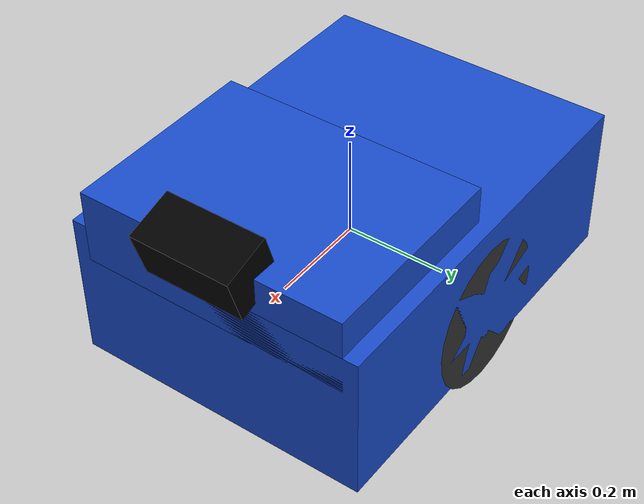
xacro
<?xml version="1.0"?>
<robot name="lane_following_robot" xmlns:xacro="http://www.ros.org/wiki/xacro">

  <!-- Robot Properties -->
  <xacro:property name="base_width" value="0.6"/>
  <xacro:property name="base_length" value="0.8"/>
  <xacro:property name="base_height" value="0.3"/>
  <xacro:property name="wheel_radius" value="0.15"/>
  <xacro:property name="wheel_width" value="0.1"/>
  <xacro:property name="wheel_separation" value="0.5"/>
  <xacro:property name="camera_size" value="0.1"/>

  <!-- Base Link (Car Body) -->
  <link name="base_link">
    <visual>
      <geometry>
        <box size="${base_length} ${base_width} ${base_height}"/>
      </geometry>
      <material name="metallic_blue">
        <color rgba="0.1 0.3 0.8 1"/>
      </material>
    </visual>
    <collision>
      <geometry>
        <box size="${base_length} ${base_width} ${base_height}"/>
      </geometry>
    </collision>
    <inertial>
      <mass value="10.0"/>
      <origin xyz="0 0 0" rpy="0 0 0"/>
      <inertia ixx="0.4" ixy="0" ixz="0" iyy="0.4" iyz="0" izz="0.7"/>
    </inertial>
  </link>

  <!-- Car Hood -->
  <link name="hood_link">
    <visual>
      <geometry>
        <box size="${base_length/2} ${base_width*0.9} ${base_height/2}"/>
      </geometry>
      <material name="metallic_blue">
        <color rgba="0.1 0.3 0.8 1"/>
      </material>
    </visual>
    <collision>
      <geometry>
        <box size="${base_length/2} ${base_width*0.9} ${base_height/2}"/>
      </geometry>
    </collision>
    <inertial>
      <mass value="2.0"/>
      <origin xyz="0 0 0" rpy="0 0 0"/>
      <inertia ixx="0.1" ixy="0" ixz="0" iyy="0.1" iyz="0" izz="0.1"/>
    </inertial>
  </link>

  <!-- Left Wheel -->
  <link name="left_wheel">
    <visual>
      <geometry>
        <cylinder radius="${wheel_radius}" length="${wheel_width}"/>
      </geometry>
      <material name="dark_gray">
        <color rgba="0.2 0.2 0.2 1"/>
      </material>
    </visual>
    <collision>
      <geometry>
        <cylinder radius="${wheel_radius}" length="${wheel_width}"/>
      </geometry>
    </collision>
    <inertial>
      <mass value="2.0"/>
      <origin xyz="0 0 0" rpy="0 0 0"/>
      <inertia ixx="0.1" ixy="0" ixz="0" iyy="0.1" iyz="0" izz="0.1"/>
    </inertial>
  </link>

  <!-- Right Wheel -->
  <link name="right_wheel">
    <visual>
      <geometry>
        <cylinder radius="${wheel_radius}" length="${wheel_width}"/>
      </geometry>
      <material name="dark_gray">
        <color rgba="0.2 0.2 0.2 1"/>
      </material>
    </visual>
    <collision>
      <geometry>
        <cylinder radius="${wheel_radius}" length="${wheel_width}"/>
      </geometry>
    </collision>
    <inertial>
      <mass value="2.0"/>
      <origin xyz="0 0 0" rpy="0 0 0"/>
      <inertia ixx="0.1" ixy="0" ixz="0" iyy="0.1" iyz="0" izz="0.1"/>
    </inertial>
  </link>

  <!-- Camera Link -->
  <link name="camera_link">
    <visual>
      <geometry>
        <box size="${camera_size} ${camera_size*2} ${camera_size}"/>
      </geometry>
      <material name="black">
        <color rgba="0 0 0 1"/>
      </material>
    </visual>
    <collision>
      <geometry>
        <box size="${camera_size} ${camera_size*2} ${camera_size}"/>
      </geometry>
    </collision>
    <inertial>
      <mass value="0.1"/>
      <origin xyz="0 0 0" rpy="0 0 0"/>
      <inertia ixx="0.0001" ixy="0" ixz="0" iyy="0.0001" iyz="0" izz="0.0001"/>
    </inertial>
  </link>

  <!-- Joints -->
  <joint name="hood_joint" type="fixed">
    <parent link="base_link"/>
    <child link="hood_link"/>
    <origin xyz="${base_length/4} 0 ${base_height/2}" rpy="0 0 0"/>
  </joint>

  <joint name="left_wheel_joint" type="continuous">
    <parent link="base_link"/>
    <child link="left_wheel"/>
    <origin xyz="0 ${wheel_separation/2} -0.05" rpy="${pi/2} 0 0"/>
    <axis xyz="0 0 1"/>
    <dynamics damping="0.1" friction="0.1"/>
  </joint>

  <joint name="right_wheel_joint" type="continuous">
    <parent link="base_link"/>
    <child link="right_wheel"/>
    <origin xyz="0 ${-wheel_separation/2} -0.05" rpy="${pi/2} 0 0"/>
    <axis xyz="0 0 1"/>
    <dynamics damping="0.1" friction="0.1"/>
  </joint>

  <joint name="camera_joint" type="fixed">
    <parent link="hood_link"/>
    <child link="camera_link"/>
    <origin xyz="${base_length/4} 0 ${base_height/4}" rpy="0 0.3 0"/>
  </joint>

  <!-- Gazebo plugins -->
  <gazebo>
    <plugin filename="gz-sim-diff-drive-system"
            name="gz_sim_diff_drive">
      <left_joint>left_wheel_joint</left_joint>
      <right_joint>right_wheel_joint</right_joint>
      <wheel_separation>${wheel_separation}</wheel_separation>
      <wheel_radius>${wheel_radius}</wheel_radius>
      <odom_publish_frequency>20</odom_publish_frequency>
      <max_linear_velocity>2.0</max_linear_velocity>
      <min_linear_velocity>-2.0</min_linear_velocity>
      <max_angular_velocity>2.0</max_angular_velocity>
      <min_angular_velocity>-2.0</min_angular_velocity>
      <max_linear_acceleration>1.0</max_linear_acceleration>
      <max_angular_acceleration>2.0</max_angular_acceleration>
      <topic>cmd_vel</topic>
    </plugin>
  </gazebo>

  <!-- Camera plugin -->
  <gazebo reference="camera_link">
    <sensor type="camera" name="camera">
      <update_rate>30.0</update_rate>
      <camera name="head">
        <horizontal_fov>1.0472</horizontal_fov>
        <image>
          <width>640</width>
          <height>480</height>
          <format>R8G8B8</format>
        </image>
        <clip>
          <near>0.02</near>
          <far>300</far>
        </clip>
        <noise>
          <type>gaussian</type>
          <mean>0.0</mean>
          <stddev>0.007</stddev>
        </noise>
      </camera>
      <plugin filename="gz-sim-camera-system"
              name="gz_sim_camera">
        <topic>camera/image_raw</topic>
        <update_rate>30.0</update_rate>
      </plugin>
    </sensor>
  </gazebo>

  <!-- Material colors for Gazebo -->
  <gazebo reference="base_link">
    <material>Gazebo/Blue</material>
    <visual>
      <material>
        <ambient>0.1 0.3 0.8 1</ambient>
        <diffuse>0.1 0.3 0.8 1</diffuse>
        <specular>0.5 0.5 0.5 1</specular>
      </material>
    </visual>
  </gazebo>

  <gazebo reference="hood_link">
    <material>Gazebo/Blue</material>
    <visual>
      <material>
        <ambient>0.1 0.3 0.8 1</ambient>
        <diffuse>0.1 0.3 0.8 1</diffuse>
        <specular>0.5 0.5 0.5 1</specular>
      </material>
    </visual>
  </gazebo>

  <gazebo reference="left_wheel">
    <material>Gazebo/DarkGrey</material>
    <mu1>1.0</mu1>
    <mu2>1.0</mu2>
    <visual>
      <material>
        <ambient>0.2 0.2 0.2 1</ambient>
        <diffuse>0.2 0.2 0.2 1</diffuse>
        <specular>0.5 0.5 0.5 1</specular>
      </material>
    </visual>
  </gazebo>

  <gazebo reference="right_wheel">
    <material>Gazebo/DarkGrey</material>
    <mu1>1.0</mu1>
    <mu2>1.0</mu2>
    <visual>
      <material>
        <ambient>0.2 0.2 0.2 1</ambient>
        <diffuse>0.2 0.2 0.2 1</diffuse>
        <specular>0.5 0.5 0.5 1</specular>
      </material>
    </visual>
  </gazebo>

  <gazebo reference="camera_link">
    <material>Gazebo/Black</material>
  </gazebo>
</robot>
